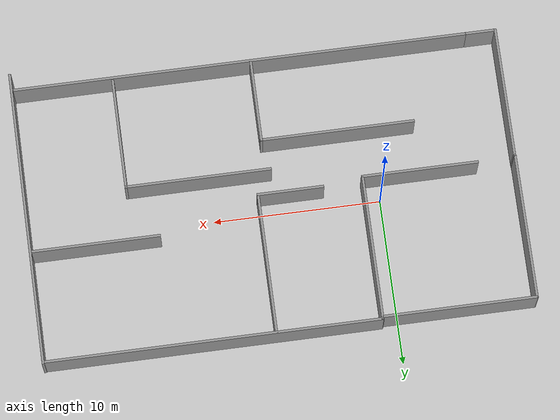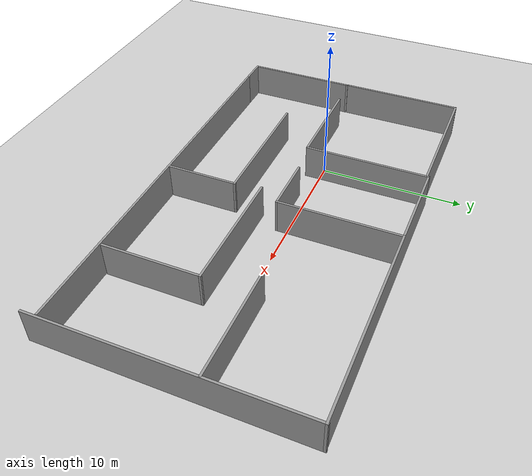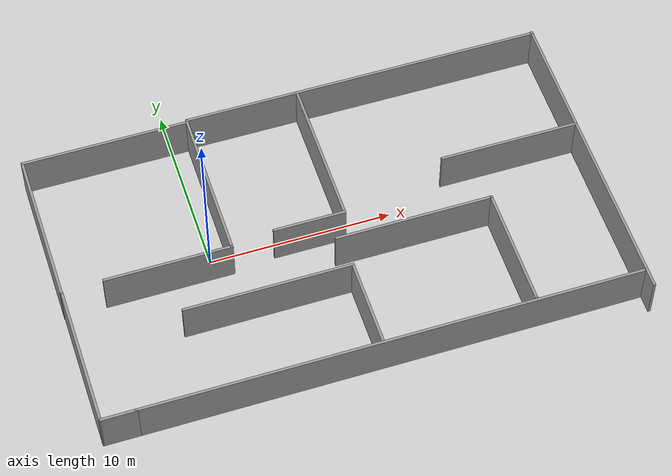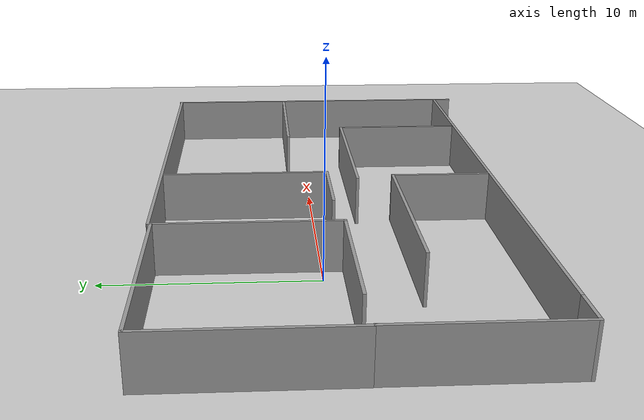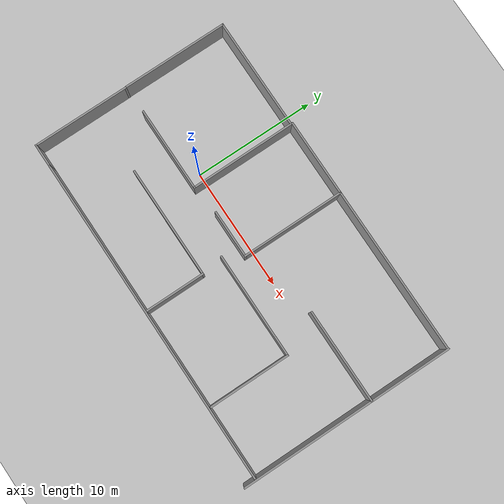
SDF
<sdf version="1.7">
 <world name="default">
  <light name="sun" type="directional">
   <pose>0 0 10 0 -0 0</pose>
   <diffuse>0.8 0.8 0.8 1</diffuse>
   <specular>0.2 0.2 0.2 1</specular>
   <attenuation>
    <range>1000</range>
    <constant>0.9</constant>
    <linear>0.01</linear>
    <quadratic>0.001</quadratic>
   </attenuation>
   <direction>-0.5 0.1 -0.9</direction>
   <spot><inner_angle>0</inner_angle><outer_angle>0</outer_angle><falloff>0</falloff></spot>
  </light>
  <model name="ground_plane">
   <static>1</static>
   <link name="link">
    <collision name="collision">
     <geometry><plane><normal>0 0 1</normal><size>100 100</size></plane></geometry>
     <surface>
      <contact><collide_bitmask>65535</collide_bitmask></contact>
      <friction><ode><mu>100</mu><mu2>50</mu2></ode></friction>
     </surface>
    </collision>
    <visual name="visual">
     <cast_shadows>0</cast_shadows>
     <geometry><plane><normal>0 0 1</normal><size>100 100</size></plane></geometry>
     <material>
      <script><uri>file://media/materials/scripts/gazebo.material</uri><name>Gazebo/Grey</name></script>
     </material>
    </visual>
   </link>
  </model>
  <gravity>0 0 -9.8</gravity>
  <magnetic_field>6e-06 2.3e-05 -4.2e-05</magnetic_field>
  <atmosphere type="adiabatic"/>
  <physics type="ode">
   <max_step_size>0.001</max_step_size>
   <real_time_factor>1</real_time_factor>
   <real_time_update_rate>1000</real_time_update_rate>
  </physics>
  <scene><ambient>0.4 0.4 0.4 1</ambient><background>0.7 0.7 0.7 1</background><shadows>1</shadows></scene>
  <audio><device>default</device></audio>
  <spherical_coordinates>
   <surface_model>EARTH_WGS84</surface_model>
   <latitude_deg>0</latitude_deg>
   <longitude_deg>0</longitude_deg>
   <elevation>0</elevation>
   <heading_deg>0</heading_deg>
  </spherical_coordinates>
  <model name="test_map">
   <pose>6.40821 -1.12208 0 0 -0 0</pose>
   <link name="Wall_0">
    <collision name="Wall_0_Collision">
     <geometry><box><size>7 0.15 2.5</size></box></geometry>
     <pose>0 0 1.25 0 -0 0</pose>
    </collision>
    <visual name="Wall_0_Visual">
     <pose>0 0 1.25 0 -0 0</pose>
     <geometry><box><size>7 0.15 2.5</size></box></geometry>
     <material>
      <script><uri>file://media/materials/scripts/gazebo.material</uri><name>Gazebo/Grey</name></script>
      <ambient>1 1 1 1</ambient>
     </material>
     <meta><layer>0</layer></meta>
    </visual>
    <pose>-8.86173 0.094503 0 0 -0 3.14159</pose>
   </link>
   <link name="Wall_12">
    <collision name="Wall_12_Collision">
     <geometry><box><size>7.75 0.15 2.5</size></box></geometry>
     <pose>0 0 1.25 0 -0 0</pose>
    </collision>
    <visual name="Wall_12_Visual">
     <pose>0 0 1.25 0 -0 0</pose>
     <geometry><box><size>7.75 0.15 2.5</size></box></geometry>
     <material>
      <script><uri>file://media/materials/scripts/gazebo.material</uri><name>Gazebo/Grey</name></script>
      <ambient>1 1 1 1</ambient>
     </material>
     <meta><layer>0</layer></meta>
    </visual>
    <pose>10.7214 2.11103 0 0 -0 0</pose>
   </link>
   <link name="Wall_18">
    <collision name="Wall_18_Collision">
     <geometry><box><size>8.5 0.15 2.5</size></box></geometry>
     <pose>0 0 1.25 0 -0 0</pose>
    </collision>
    <visual name="Wall_18_Visual">
     <pose>0 0 1.25 0 -0 0</pose>
     <geometry><box><size>8.5 0.15 2.5</size></box></geometry>
     <material>
      <script><uri>file://media/materials/scripts/gazebo.material</uri><name>Gazebo/Grey</name></script>
      <ambient>1 1 1 1</ambient>
     </material>
     <meta><layer>0</layer></meta>
    </visual>
    <pose>0.836322 4.56717 0 0 -0 -1.5708</pose>
   </link>
   <link name="Wall_19">
    <collision name="Wall_19_Collision">
     <geometry><box><size>4 0.15 2.5</size></box></geometry>
     <pose>0 0 1.25 0 -0 0</pose>
    </collision>
    <visual name="Wall_19_Visual">
     <pose>0 0 1.25 0 -0 0</pose>
     <geometry><box><size>4 0.15 2.5</size></box></geometry>
     <material>
      <script><uri>file://media/materials/scripts/gazebo.material</uri><name>Gazebo/Grey</name></script>
      <ambient>1 1 1 1</ambient>
     </material>
     <meta><layer>0</layer></meta>
    </visual>
    <pose>-1.08868 0.39217 0 0 -0 3.14159</pose>
   </link>
   <link name="Wall_2">
    <collision name="Wall_2_Collision">
     <geometry><box><size>8.80497 0.15 2.5</size></box></geometry>
     <pose>0 0 1.25 0 -0 0</pose>
    </collision>
    <visual name="Wall_2_Visual">
     <pose>0 0 1.25 0 -0 0</pose>
     <geometry><box><size>8.80497 0.15 2.5</size></box></geometry>
     <material>
      <script><uri>file://media/materials/scripts/gazebo.material</uri><name>Gazebo/Grey</name></script>
      <ambient>1 1 1 1</ambient>
     </material>
     <meta><layer>0</layer></meta>
    </visual>
    <pose>-5.43673 4.42199 0 0 -0 1.5708</pose>
   </link>
   <link name="Wall_22">
    <collision name="Wall_22_Collision">
     <geometry><box><size>9.13298 0.15 2.5</size></box></geometry>
     <pose>0 0 1.25 0 -0 0</pose>
    </collision>
    <visual name="Wall_22_Visual">
     <pose>0 0 1.25 0 -0 0</pose>
     <geometry><box><size>9.13298 0.15 2.5</size></box></geometry>
     <material>
      <script><uri>file://media/materials/scripts/gazebo.material</uri><name>Gazebo/Grey</name></script>
      <ambient>1 1 1 1</ambient>
     </material>
     <meta><layer>0</layer></meta>
    </visual>
    <pose>-10.0408 8.66416 0 0 -0 0</pose>
   </link>
   <link name="Wall_27">
    <collision name="Wall_27_Collision">
     <geometry><box><size>27.25 0.15 2.5</size></box></geometry>
     <pose>0 0 1.25 0 -0 0</pose>
    </collision>
    <visual name="Wall_27_Visual">
     <pose>0 0 1.25 0 -0 0</pose>
     <geometry><box><size>27.25 0.15 2.5</size></box></geometry>
     <material>
      <script><uri>file://media/materials/scripts/gazebo.material</uri><name>Gazebo/Grey</name></script>
      <ambient>1 1 1 1</ambient>
     </material>
     <meta><layer>0</layer></meta>
    </visual>
    <pose>0.850994 -7.87469 0 0 -0 0</pose>
   </link>
   <link name="Wall_29">
    <collision name="Wall_29_Collision">
     <geometry><box><size>6.75 0.15 2.5</size></box></geometry>
     <pose>0 0 1.25 0 -0 0</pose>
    </collision>
    <visual name="Wall_29_Visual">
     <pose>0 0 1.25 0 -0 0</pose>
     <geometry><box><size>6.75 0.15 2.5</size></box></geometry>
     <material>
      <script><uri>file://media/materials/scripts/gazebo.material</uri><name>Gazebo/Grey</name></script>
      <ambient>1 1 1 1</ambient>
     </material>
     <meta><layer>0</layer></meta>
    </visual>
    <pose>8.52064 -4.37965 0 0 -0 1.5708</pose>
   </link>
   <link name="Wall_3">
    <collision name="Wall_3_Collision">
     <geometry><box><size>20.1194 0.15 2.5</size></box></geometry>
     <pose>0 0 1.25 0 -0 0</pose>
    </collision>
    <visual name="Wall_3_Visual">
     <pose>0 0 1.25 0 -0 0</pose>
     <geometry><box><size>20.1194 0.15 2.5</size></box></geometry>
     <material>
      <script><uri>file://media/materials/scripts/gazebo.material</uri><name>Gazebo/Grey</name></script>
      <ambient>1 1 1 1</ambient>
     </material>
     <meta><layer>0</layer></meta>
    </visual>
    <pose>4.58665 8.78848 0 0 -0 0</pose>
   </link>
   <link name="Wall_30">
    <collision name="Wall_30_Collision">
     <geometry><box><size>8.75 0.15 2.5</size></box></geometry>
     <pose>0 0 1.25 0 -0 0</pose>
    </collision>
    <visual name="Wall_30_Visual">
     <pose>0 0 1.25 0 -0 0</pose>
     <geometry><box><size>8.75 0.15 2.5</size></box></geometry>
     <material>
      <script><uri>file://media/materials/scripts/gazebo.material</uri><name>Gazebo/Grey</name></script>
      <ambient>1 1 1 1</ambient>
     </material>
     <meta><layer>0</layer></meta>
    </visual>
    <pose>4.22064 -1.07965 0 0 -0 3.14159</pose>
   </link>
   <link name="Wall_32">
    <collision name="Wall_32_Collision">
     <geometry><box><size>5 0.15 2.5</size></box></geometry>
     <pose>0 0 1.25 0 -0 0</pose>
    </collision>
    <visual name="Wall_32_Visual">
     <pose>0 0 1.25 0 -0 0</pose>
     <geometry><box><size>5 0.15 2.5</size></box></geometry>
     <material>
      <script><uri>file://media/materials/scripts/gazebo.material</uri><name>Gazebo/Grey</name></script>
      <ambient>1 1 1 1</ambient>
     </material>
     <meta><layer>0</layer></meta>
    </visual>
    <pose>0.212214 -5.33267 0 0 -0 1.5708</pose>
   </link>
   <link name="Wall_33">
    <collision name="Wall_33_Collision">
     <geometry><box><size>9.25 0.15 2.5</size></box></geometry>
     <pose>0 0 1.25 0 -0 0</pose>
    </collision>
    <visual name="Wall_33_Visual">
     <pose>0 0 1.25 0 -0 0</pose>
     <geometry><box><size>9.25 0.15 2.5</size></box></geometry>
     <material>
      <script><uri>file://media/materials/scripts/gazebo.material</uri><name>Gazebo/Grey</name></script>
      <ambient>1 1 1 1</ambient>
     </material>
     <meta><layer>0</layer></meta>
    </visual>
    <pose>-4.33779 -2.90767 0 0 -0 3.14159</pose>
   </link>
   <link name="Wall_35">
    <collision name="Wall_35_Collision">
     <geometry><box><size>2 0.15 2.5</size></box></geometry>
     <pose>0 0 1.25 0 -0 0</pose>
    </collision>
    <visual name="Wall_35_Visual">
     <pose>0 0 1.25 0 -0 0</pose>
     <geometry><box><size>2 0.15 2.5</size></box></geometry>
     <material>
      <script><uri>file://media/materials/scripts/gazebo.material</uri><name>Gazebo/Grey</name></script>
      <ambient>1 1 1 1</ambient>
     </material>
     <meta><layer>0</layer></meta>
    </visual>
    <pose>-13.624 -7.87469 0 0 -0 3.14159</pose>
   </link>
   <link name="Wall_36">
    <collision name="Wall_36_Collision">
     <geometry><box><size>8 0.15 2.5</size></box></geometry>
     <pose>0 0 1.25 0 -0 0</pose>
    </collision>
    <visual name="Wall_36_Visual">
     <pose>0 0 1.25 0 -0 0</pose>
     <geometry><box><size>8 0.15 2.5</size></box></geometry>
     <material>
      <script><uri>file://media/materials/scripts/gazebo.material</uri><name>Gazebo/Grey</name></script>
      <ambient>1 1 1 1</ambient>
     </material>
     <meta><layer>0</layer></meta>
    </visual>
    <pose>-14.549 -3.94969 0 0 -0 1.5708</pose>
   </link>
   <link name="Wall_37">
    <collision name="Wall_37_Collision">
     <geometry><box><size>0.15 0.15 2.5</size></box></geometry>
     <pose>0 0 1.25 0 -0 0</pose>
    </collision>
    <visual name="Wall_37_Visual">
     <pose>0 0 1.25 0 -0 0</pose>
     <geometry><box><size>0.15 0.15 2.5</size></box></geometry>
     <material>
      <script><uri>file://media/materials/scripts/gazebo.material</uri><name>Gazebo/Grey</name></script>
      <ambient>1 1 1 1</ambient>
     </material>
     <meta><layer>0</layer></meta>
    </visual>
    <pose>-14.549 -0.024688 0 0 -0 0</pose>
   </link>
   <link name="Wall_38">
    <collision name="Wall_38_Collision">
     <geometry><box><size>0.15 0.15 2.5</size></box></geometry>
     <pose>0 0 1.25 0 -0 0</pose>
    </collision>
    <visual name="Wall_38_Visual">
     <pose>0 0 1.25 0 -0 0</pose>
     <geometry><box><size>0.15 0.15 2.5</size></box></geometry>
     <material>
      <script><uri>file://media/materials/scripts/gazebo.material</uri><name>Gazebo/Grey</name></script>
      <ambient>1 1 1 1</ambient>
     </material>
     <meta><layer>0</layer></meta>
    </visual>
    <pose>-14.549 -0.024688 0 0 -0 0</pose>
   </link>
   <link name="Wall_4">
    <collision name="Wall_4_Collision">
     <geometry><box><size>17.805 0.15 2.5</size></box></geometry>
     <pose>0 0 1.25 0 -0 0</pose>
    </collision>
    <visual name="Wall_4_Visual">
     <pose>0 0 1.25 0 -0 0</pose>
     <geometry><box><size>17.805 0.15 2.5</size></box></geometry>
     <material>
      <script><uri>file://media/materials/scripts/gazebo.material</uri><name>Gazebo/Grey</name></script>
      <ambient>1 1 1 1</ambient>
     </material>
     <meta><layer>0</layer></meta>
    </visual>
    <pose>14.571 0 0 0 -0 -1.5708</pose>
   </link>
   <link name="Wall_9">
    <collision name="Wall_9_Collision">
     <geometry><box><size>8.75 0.15 2.5</size></box></geometry>
     <pose>0 0 1.25 0 -0 0</pose>
    </collision>
    <visual name="Wall_9_Visual">
     <pose>0 0 1.25 0 -0 0</pose>
     <geometry><box><size>8.75 0.15 2.5</size></box></geometry>
     <material>
      <script><uri>file://media/materials/scripts/gazebo.material</uri><name>Gazebo/Grey</name></script>
      <ambient>1 1 1 1</ambient>
     </material>
     <meta><layer>0</layer></meta>
    </visual>
    <pose>-14.5713 4.36416 0 0 -0 -1.5708</pose>
   </link>
   <static>1</static>
  </model>
 </world>
</sdf>
